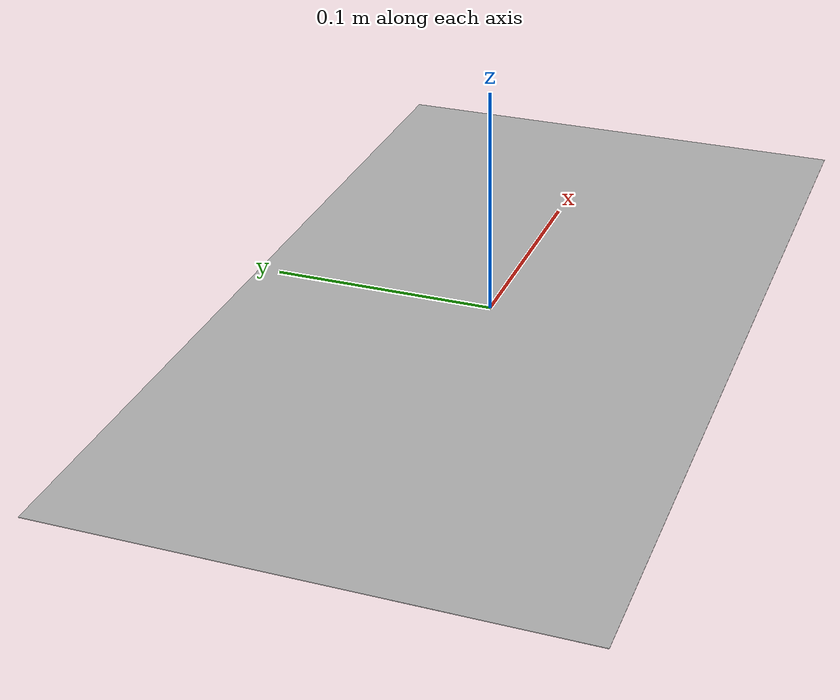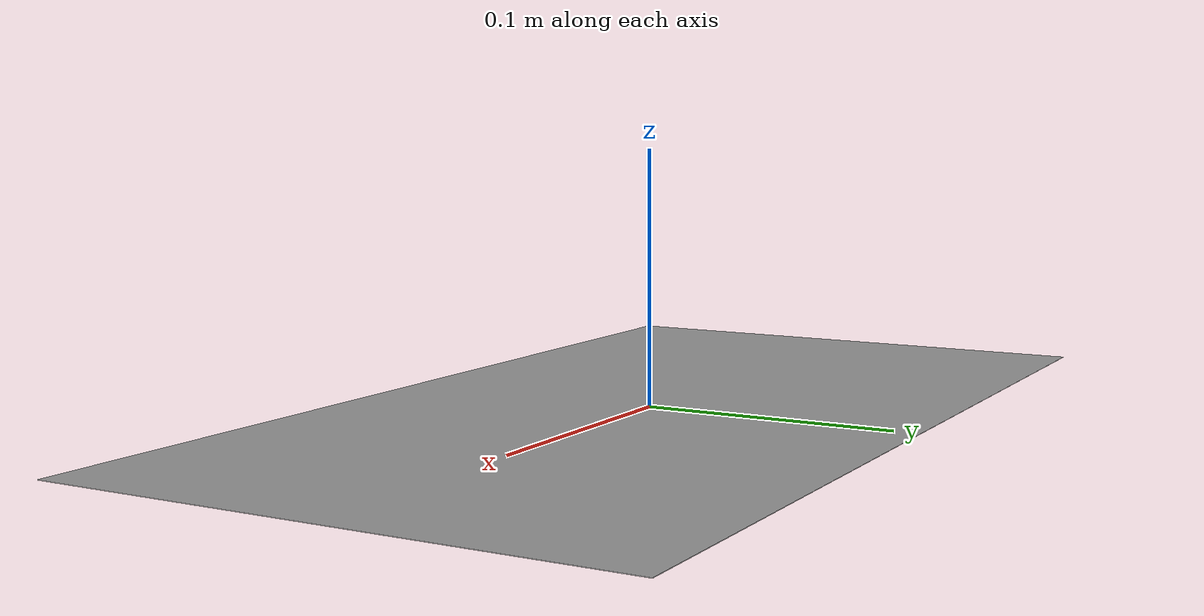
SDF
<?xml version="1.0"?>
<sdf version="1.4">
<model name="image_pallet_rack">
  <static>true</static>
    <link name="link">
      <visual name="visual">
        <cast_shadows>false</cast_shadows>
        <geometry>
          <plane>
            <normal>0 0 1</normal>
            <size>0.4 0.22</size>
          </plane>
        </geometry>
        <material>
          <script>
            <uri>model://image_pallet_rack/materials/scripts</uri>
            <uri>model://image_pallet_rack/materials/textures</uri>
            <name>ImagePalletRack/Image</name>
          </script>
        </material>
      </visual>
    </link>
  </model>
</sdf>
